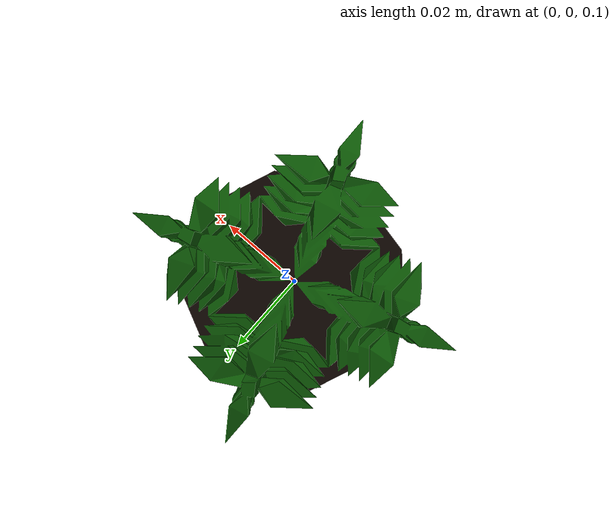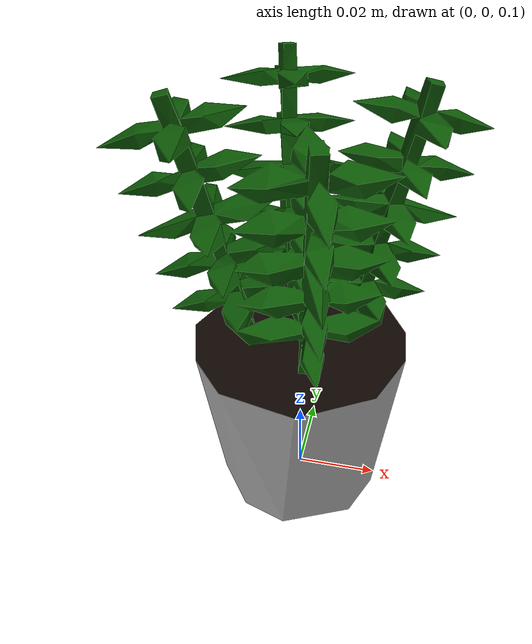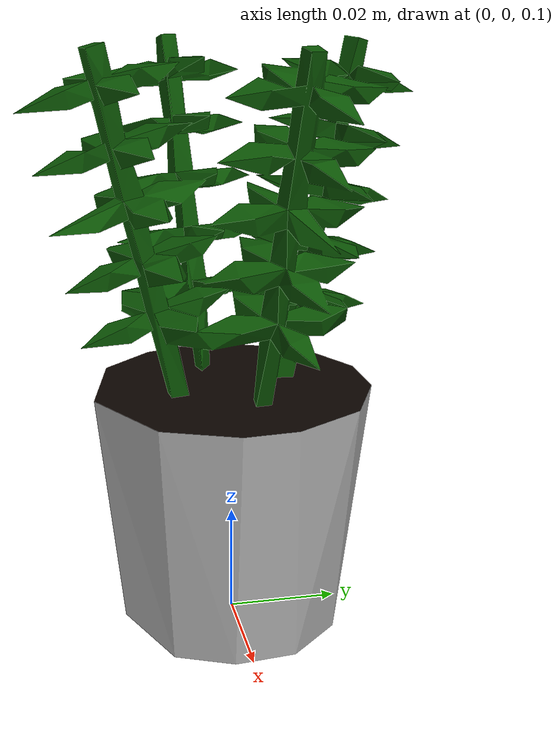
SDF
<?xml version='1.0' ?>
<sdf version='1.6'>
  <model name='plante_resistante'>
    <link name='link'>
      <pose>0 0 0.1 0 0 0</pose>
      <collision name='collision'>
        <geometry>
          <mesh>
            <uri>meshes/model.dae</uri>
          </mesh>
        </geometry>
      </collision>
      <visual name='visual'>
        <geometry>
          <mesh>
            <uri>meshes/model.dae</uri>
          </mesh>
        </geometry>
      </visual>
    </link>
  </model>
</sdf>
